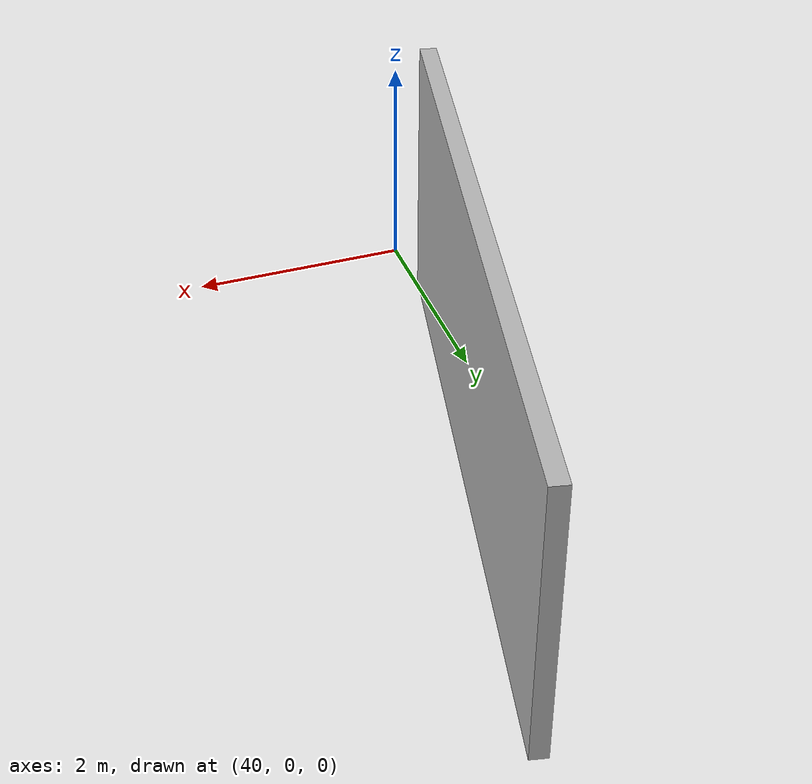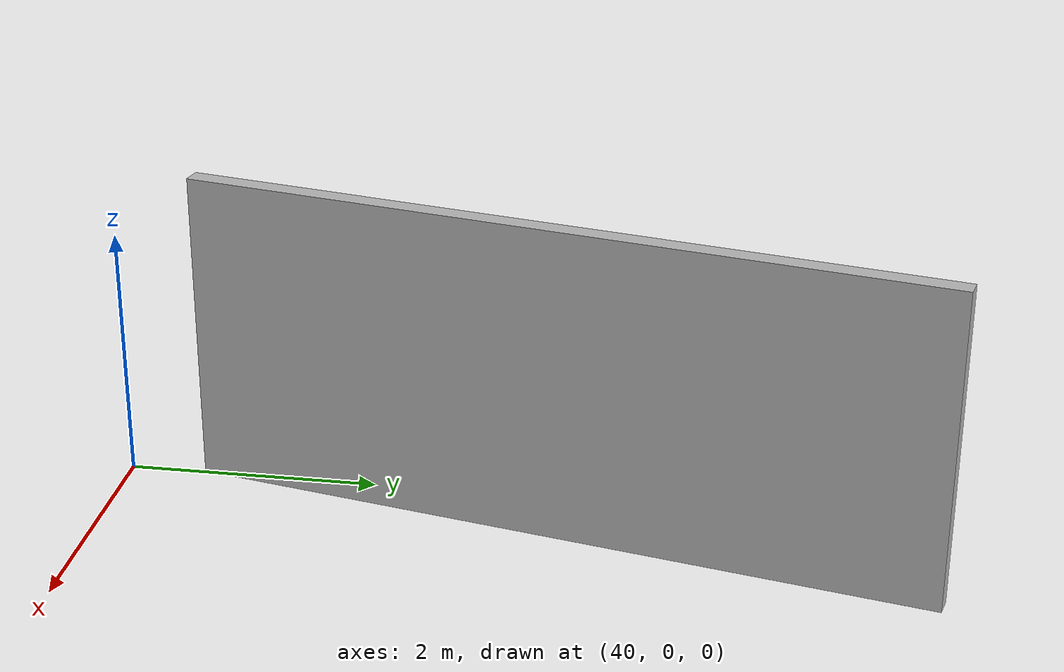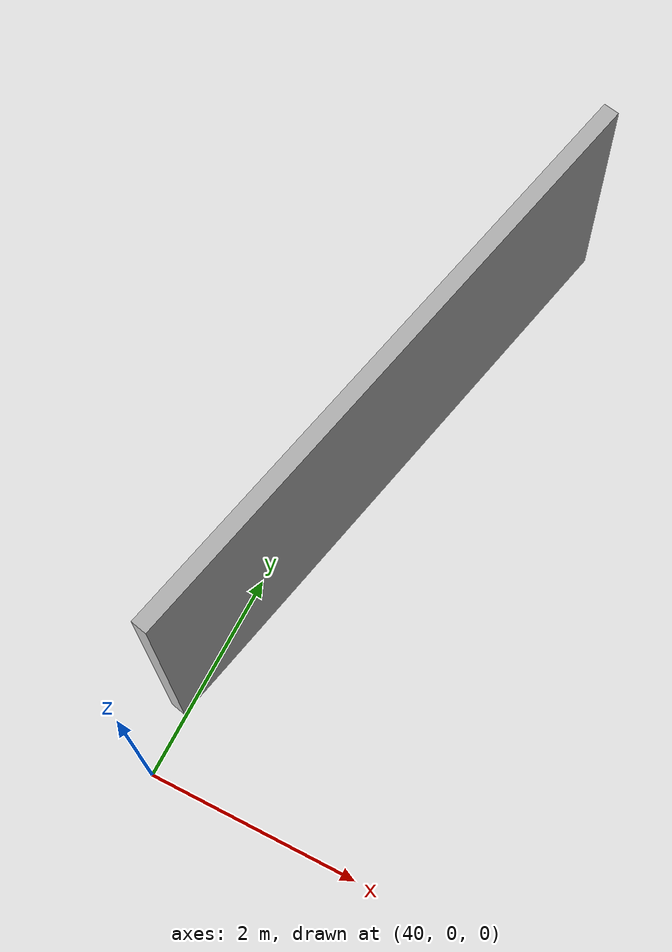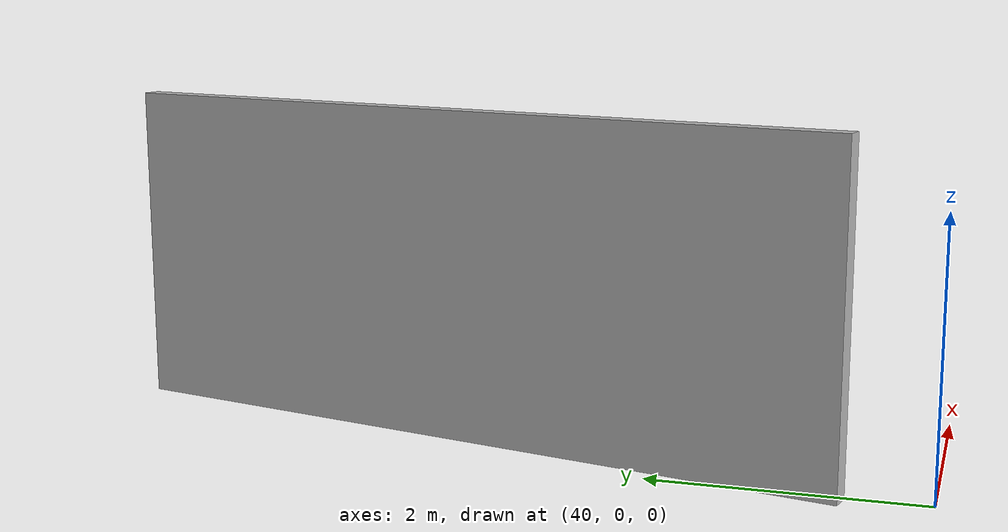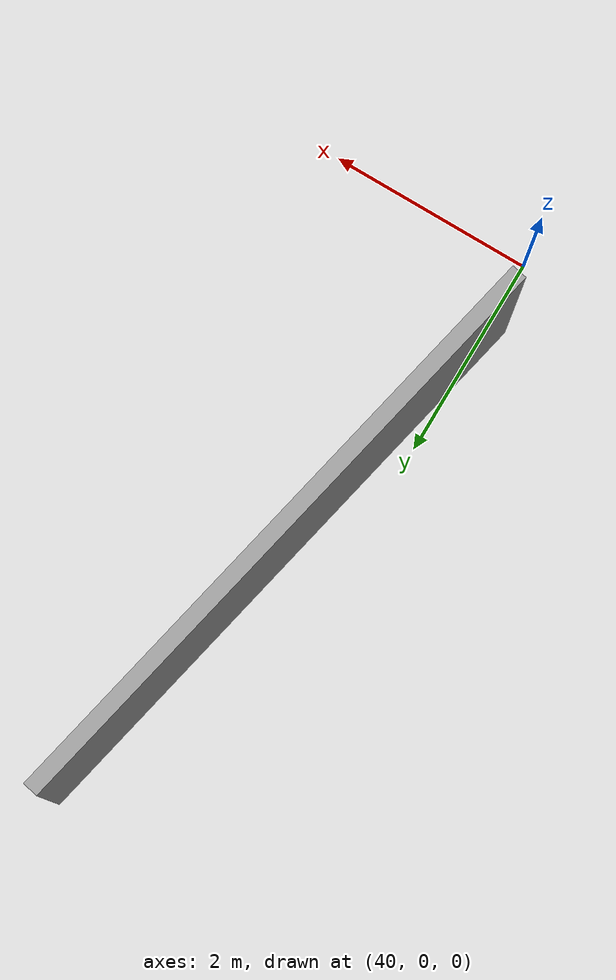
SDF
<?xml version="1.0" ?>
<sdf version="1.6">
  <model name="sps_2605">
    <pose frame="">0 0 0 0 -0 0</pose>
    <static>0</static>
    <self_collide>0</self_collide>
    <allow_auto_disable>0</allow_auto_disable>
    <link name="Wall1563">
      <kinematic>0</kinematic>
      <gravity>1</gravity>
      <self_collide>0</self_collide>
      <collision name="collision">
        <geometry>
          <box>
            <size>5.9601 0.15 2.5</size>
          </box>
        </geometry>
        <pose frame="">0 0 0 0 -0 0</pose>
      </collision>
      <visual name="visual">
        <geometry>
          <box>
            <size>5.9601 0.15 2.5</size>
          </box>
        </geometry>
        <pose frame="">0 0 0 0 -0 0</pose>
        <cast_shadows>1</cast_shadows>
        <transparency>0.0</transparency>
      </visual>
      <pose frame="">40.5416 3.52537 1.25 0 0 -1.78508</pose>
    </link>
  </model>
</sdf>
